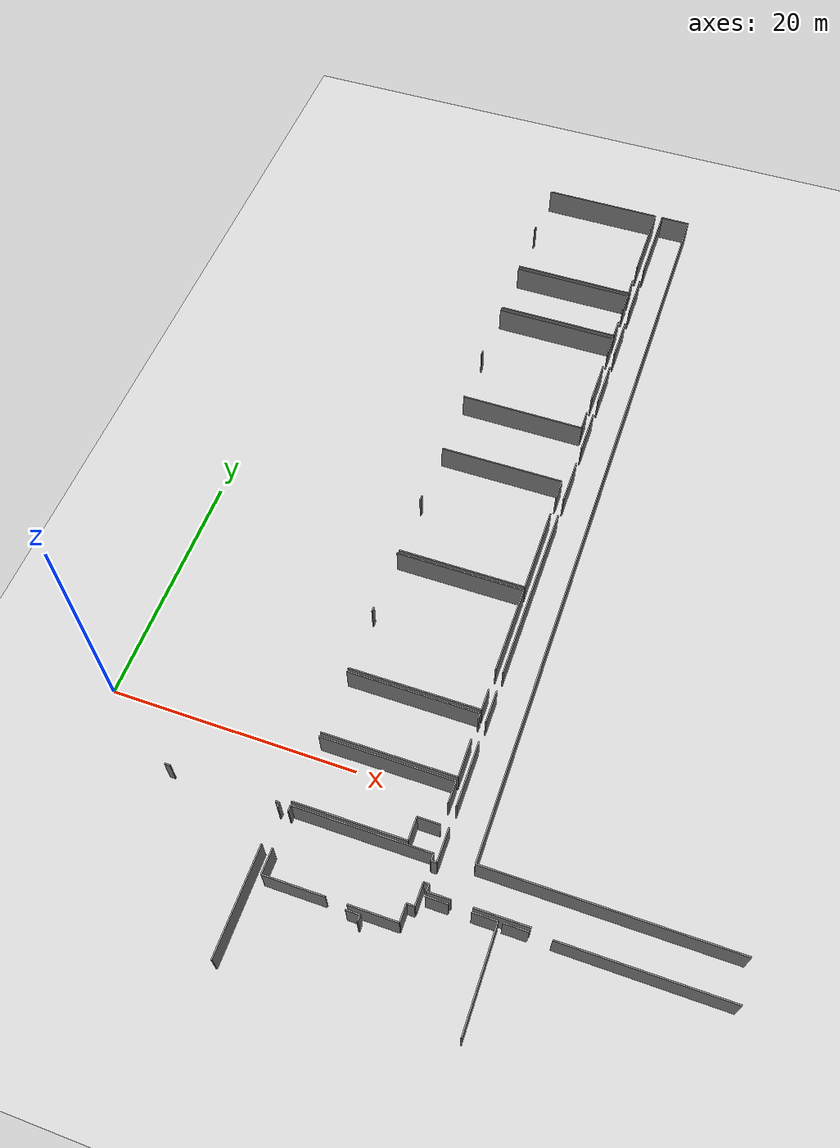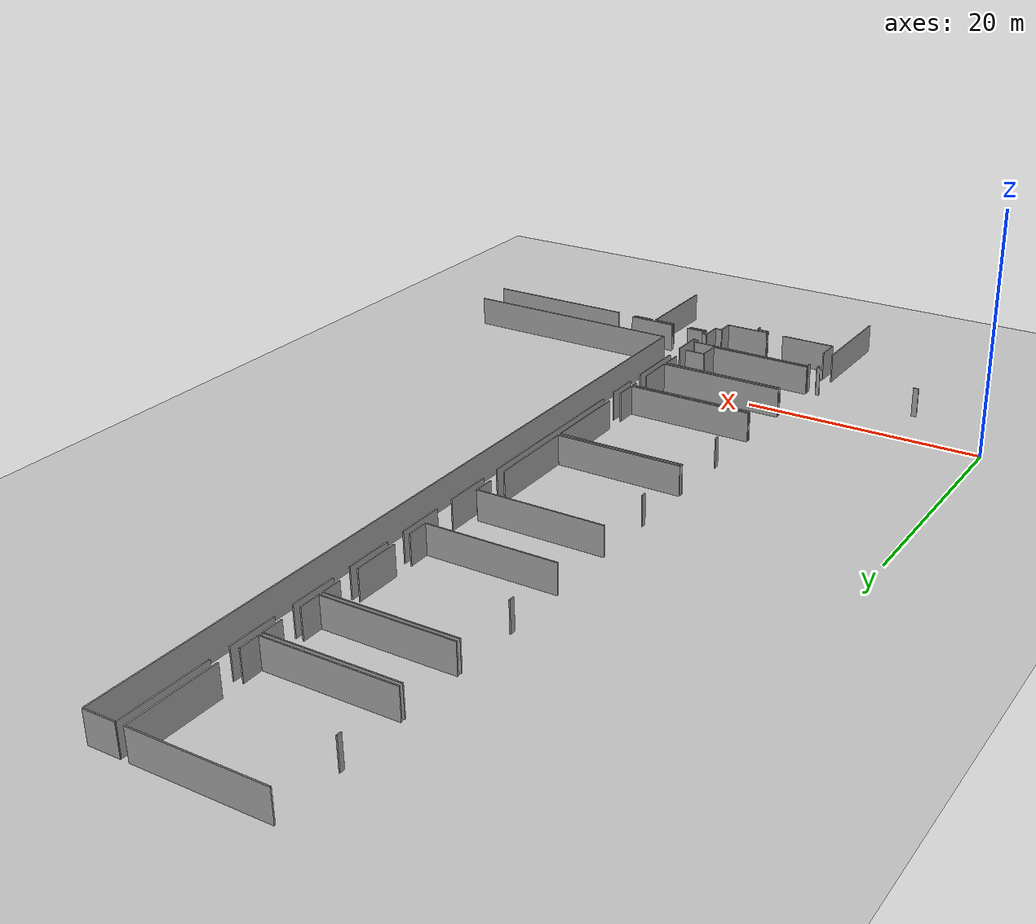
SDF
<sdf version="1.6">
 <world name="default">
  <model name="ground_plane">
   <static>1</static>
   <link name="link">
    <collision name="collision">
     <geometry><plane><normal>0 0 1</normal><size>100 100</size></plane></geometry>
     <surface><friction><ode><mu>100</mu><mu2>50</mu2></ode></friction></surface>
    </collision>
    <visual name="visual">
     <cast_shadows>0</cast_shadows>
     <geometry><plane><normal>0 0 1</normal><size>100 100</size></plane></geometry>
     <material>
      <script><uri>file://media/materials/scripts/gazebo.material</uri><name>Gazebo/Grey</name></script>
     </material>
    </visual>
   </link>
  </model>
  <model name="0510045905_A_40_1_103">
   <static>1</static>
   <link name="Wall_154">
    <collision name="Wall_154_Collision">
     <geometry><box><size>0.448468620521 0.1 2.5</size></box></geometry>
     <pose>0.224234310261 0 1.25 0 0 0</pose>
    </collision>
    <visual name="Wall_154_Visual">
     <pose>0.224234310261 0 1.25 0 0 0</pose>
     <geometry><box><size>0.448468620521 0.1 2.5</size></box></geometry>
     <material>
      <script><uri>file://media/materials/scripts/gazebo.material</uri><name>Gazebo/Grey</name></script>
      <ambient>1 1 1 1</ambient>
     </material>
    </visual>
    <pose>90.9373552534 -67.2365373756 0 0 0 0.0</pose>
   </link>
   <link name="Wall_155">
    <collision name="Wall_155_Collision">
     <geometry><box><size>0.295679650768 0.1 2.5</size></box></geometry>
     <pose>0.147839825384 0 1.25 0 0 0</pose>
    </collision>
    <visual name="Wall_155_Visual">
     <pose>0.147839825384 0 1.25 0 0 0</pose>
     <geometry><box><size>0.295679650768 0.1 2.5</size></box></geometry>
     <material>
      <script><uri>file://media/materials/scripts/gazebo.material</uri><name>Gazebo/Grey</name></script>
      <ambient>1 1 1 1</ambient>
     </material>
    </visual>
    <pose>99.6772904069 -67.2365373756 0 0 0 0.0</pose>
   </link>
   <link name="Wall_156">
    <collision name="Wall_156_Collision">
     <geometry><box><size>0.362683451457 0.1 2.5</size></box></geometry>
     <pose>0.181341725729 0 1.25 0 0 0</pose>
    </collision>
    <visual name="Wall_156_Visual">
     <pose>0.181341725729 0 1.25 0 0 0</pose>
     <geometry><box><size>0.362683451457 0.1 2.5</size></box></geometry>
     <material>
      <script><uri>file://media/materials/scripts/gazebo.material</uri><name>Gazebo/Grey</name></script>
      <ambient>1 1 1 1</ambient>
     </material>
    </visual>
    <pose>99.9729700577 -67.2365373756 0 0 0 -1.57079632679</pose>
   </link>
   <link name="Wall_157">
    <collision name="Wall_157_Collision">
     <geometry><box><size>8.36735341332 0.1 2.5</size></box></geometry>
     <pose>4.18367670666 0 1.25 0 0 0</pose>
    </collision>
    <visual name="Wall_157_Visual">
     <pose>4.18367670666 0 1.25 0 0 0</pose>
     <geometry><box><size>8.36735341332 0.1 2.5</size></box></geometry>
     <material>
      <script><uri>file://media/materials/scripts/gazebo.material</uri><name>Gazebo/Grey</name></script>
      <ambient>1 1 1 1</ambient>
     </material>
    </visual>
    <pose>99.9729700577 -70.4265781743 0 0 0 -1.57079632679</pose>
   </link>
   <link name="Wall_166">
    <collision name="Wall_166_Collision">
     <geometry><box><size>1.98574900224 0.1 2.5</size></box></geometry>
     <pose>0.99287450112 0 1.25 0 0 0</pose>
    </collision>
    <visual name="Wall_166_Visual">
     <pose>0.99287450112 0 1.25 0 0 0</pose>
     <geometry><box><size>1.98574900224 0.1 2.5</size></box></geometry>
     <material>
      <script><uri>file://media/materials/scripts/gazebo.material</uri><name>Gazebo/Grey</name></script>
      <ambient>1 1 1 1</ambient>
     </material>
    </visual>
    <pose>100.808487148 -72.4232406744 0 0 0 1.57079632679</pose>
   </link>
   <link name="Wall_167">
    <collision name="Wall_167_Collision">
     <geometry><box><size>0.48552375272 0.1 2.5</size></box></geometry>
     <pose>0.24276187636 0 1.25 0 0 0</pose>
    </collision>
    <visual name="Wall_167_Visual">
     <pose>0.24276187636 0 1.25 0 0 0</pose>
     <geometry><box><size>0.48552375272 0.1 2.5</size></box></geometry>
     <material>
      <script><uri>file://media/materials/scripts/gazebo.material</uri><name>Gazebo/Grey</name></script>
      <ambient>1 1 1 1</ambient>
     </material>
    </visual>
    <pose>100.808487148 -67.6400829933 0 0 0 1.57079632679</pose>
   </link>
   <link name="Wall_168">
    <collision name="Wall_168_Collision">
     <geometry><box><size>10.7706071585 0.1 2.5</size></box></geometry>
     <pose>5.38530357925 0 1.25 0 0 0</pose>
    </collision>
    <visual name="Wall_168_Visual">
     <pose>5.38530357925 0 1.25 0 0 0</pose>
     <geometry><box><size>10.7706071585 0.1 2.5</size></box></geometry>
     <material>
      <script><uri>file://media/materials/scripts/gazebo.material</uri><name>Gazebo/Grey</name></script>
      <ambient>1 1 1 1</ambient>
     </material>
    </visual>
    <pose>100.808487148 -67.1545592406 0 0 0 0.0</pose>
   </link>
   <link name="Wall_169">
    <collision name="Wall_169_Collision">
     <geometry><box><size>0.529685348629 0.1 2.5</size></box></geometry>
     <pose>0.264842674315 0 1.25 0 0 0</pose>
    </collision>
    <visual name="Wall_169_Visual">
     <pose>0.264842674315 0 1.25 0 0 0</pose>
     <geometry><box><size>0.529685348629 0.1 2.5</size></box></geometry>
     <material>
      <script><uri>file://media/materials/scripts/gazebo.material</uri><name>Gazebo/Grey</name></script>
      <ambient>1 1 1 1</ambient>
     </material>
    </visual>
    <pose>111.579094307 -67.1545592406 0 0 0 -1.57079632679</pose>
   </link>
   <link name="Wall_170">
    <collision name="Wall_170_Collision">
     <geometry><box><size>0.419281358857 0.1 2.5</size></box></geometry>
     <pose>0.209640679429 0 1.25 0 0 0</pose>
    </collision>
    <visual name="Wall_170_Visual">
     <pose>0.209640679429 0 1.25 0 0 0</pose>
     <geometry><box><size>0.419281358857 0.1 2.5</size></box></geometry>
     <material>
      <script><uri>file://media/materials/scripts/gazebo.material</uri><name>Gazebo/Grey</name></script>
      <ambient>1 1 1 1</ambient>
     </material>
    </visual>
    <pose>111.579094307 -67.6842445893 0 0 0 0.0</pose>
   </link>
   <link name="Wall_171">
    <collision name="Wall_171_Collision">
     <geometry><box><size>2.64842674315 0.1 2.5</size></box></geometry>
     <pose>1.32421337157 0 1.25 0 0 0</pose>
    </collision>
    <visual name="Wall_171_Visual">
     <pose>1.32421337157 0 1.25 0 0 0</pose>
     <geometry><box><size>2.64842674315 0.1 2.5</size></box></geometry>
     <material>
      <script><uri>file://media/materials/scripts/gazebo.material</uri><name>Gazebo/Grey</name></script>
      <ambient>1 1 1 1</ambient>
     </material>
    </visual>
    <pose>111.998375665 -67.6842445893 0 0 0 1.57079632679</pose>
   </link>
   <link name="Wall_172">
    <collision name="Wall_172_Collision">
     <geometry><box><size>5.20091622621 0.1 2.5</size></box></geometry>
     <pose>2.60045811311 0 1.25 0 0 0</pose>
    </collision>
    <visual name="Wall_172_Visual">
     <pose>2.60045811311 0 1.25 0 0 0</pose>
     <geometry><box><size>5.20091622621 0.1 2.5</size></box></geometry>
     <material>
      <script><uri>file://media/materials/scripts/gazebo.material</uri><name>Gazebo/Grey</name></script>
      <ambient>1 1 1 1</ambient>
     </material>
    </visual>
    <pose>111.998375665 -63.3642760607 0 0 0 1.57079632679</pose>
   </link>
   <link name="Wall_173">
    <collision name="Wall_173_Collision">
     <geometry><box><size>2.66999993655 0.1 2.5</size></box></geometry>
     <pose>1.33499996827 0 1.25 0 0 0</pose>
    </collision>
    <visual name="Wall_173_Visual">
     <pose>1.33499996827 0 1.25 0 0 0</pose>
     <geometry><box><size>2.66999993655 0.1 2.5</size></box></geometry>
     <material>
      <script><uri>file://media/materials/scripts/gazebo.material</uri><name>Gazebo/Grey</name></script>
      <ambient>1 1 1 1</ambient>
     </material>
    </visual>
    <pose>111.998375665 -56.5029853493 0 0 0 1.57079632679</pose>
   </link>
   <link name="Wall_174">
    <collision name="Wall_174_Collision">
     <geometry><box><size>15.1311840511 0.1 2.5</size></box></geometry>
     <pose>7.56559202553 0 1.25 0 0 0</pose>
    </collision>
    <visual name="Wall_174_Visual">
     <pose>7.56559202553 0 1.25 0 0 0</pose>
     <geometry><box><size>15.1311840511 0.1 2.5</size></box></geometry>
     <material>
      <script><uri>file://media/materials/scripts/gazebo.material</uri><name>Gazebo/Grey</name></script>
      <ambient>1 1 1 1</ambient>
     </material>
    </visual>
    <pose>111.998375665 -52.1926613072 0 0 0 1.57079632679</pose>
   </link>
   <link name="Wall_175">
    <collision name="Wall_175_Collision">
     <geometry><box><size>3.90347899469 0.1 2.5</size></box></geometry>
     <pose>1.95173949734 0 1.25 0 0 0</pose>
    </collision>
    <visual name="Wall_175_Visual">
     <pose>1.95173949734 0 1.25 0 0 0</pose>
     <geometry><box><size>3.90347899469 0.1 2.5</size></box></geometry>
     <material>
      <script><uri>file://media/materials/scripts/gazebo.material</uri><name>Gazebo/Grey</name></script>
      <ambient>1 1 1 1</ambient>
     </material>
    </visual>
    <pose>111.998375665 -35.3528803386 0 0 0 1.57079632679</pose>
   </link>
   <link name="Wall_176">
    <collision name="Wall_176_Collision">
     <geometry><box><size>3.85728698058 0.1 2.5</size></box></geometry>
     <pose>1.92864349029 0 1.25 0 0 0</pose>
    </collision>
    <visual name="Wall_176_Visual">
     <pose>1.92864349029 0 1.25 0 0 0</pose>
     <geometry><box><size>3.85728698058 0.1 2.5</size></box></geometry>
     <material>
      <script><uri>file://media/materials/scripts/gazebo.material</uri><name>Gazebo/Grey</name></script>
      <ambient>1 1 1 1</ambient>
     </material>
    </visual>
    <pose>111.998375665 -29.7413120309 0 0 0 1.57079632679</pose>
   </link>
   <link name="Wall_177">
    <collision name="Wall_177_Collision">
     <geometry><box><size>3.97175180675 0.1 2.5</size></box></geometry>
     <pose>1.98587590338 0 1.25 0 0 0</pose>
    </collision>
    <visual name="Wall_177_Visual">
     <pose>1.98587590338 0 1.25 0 0 0</pose>
     <geometry><box><size>3.97175180675 0.1 2.5</size></box></geometry>
     <material>
      <script><uri>file://media/materials/scripts/gazebo.material</uri><name>Gazebo/Grey</name></script>
      <ambient>1 1 1 1</ambient>
     </material>
    </visual>
    <pose>111.998375665 -24.1952247102 0 0 0 1.57079632679</pose>
   </link>
   <link name="Wall_178">
    <collision name="Wall_178_Collision">
     <geometry><box><size>3.87403793075 0.1 2.5</size></box></geometry>
     <pose>1.93701896538 0 1.25 0 0 0</pose>
    </collision>
    <visual name="Wall_178_Visual">
     <pose>1.93701896538 0 1.25 0 0 0</pose>
     <geometry><box><size>3.87403793075 0.1 2.5</size></box></geometry>
     <material>
      <script><uri>file://media/materials/scripts/gazebo.material</uri><name>Gazebo/Grey</name></script>
      <ambient>1 1 1 1</ambient>
     </material>
    </visual>
    <pose>111.998375665 -18.5590375818 0 0 0 1.57079632679</pose>
   </link>
   <link name="Wall_179">
    <collision name="Wall_179_Collision">
     <geometry><box><size>3.96159971574 0.1 2.5</size></box></geometry>
     <pose>1.98079985787 0 1.25 0 0 0</pose>
    </collision>
    <visual name="Wall_179_Visual">
     <pose>1.98079985787 0 1.25 0 0 0</pose>
     <geometry><box><size>3.96159971574 0.1 2.5</size></box></geometry>
     <material>
      <script><uri>file://media/materials/scripts/gazebo.material</uri><name>Gazebo/Grey</name></script>
      <ambient>1 1 1 1</ambient>
     </material>
    </visual>
    <pose>111.998375665 -13.0055899951 0 0 0 1.57079632679</pose>
   </link>
   <link name="Wall_180">
    <collision name="Wall_180_Collision">
     <geometry><box><size>7.35925077568 0.1 2.5</size></box></geometry>
     <pose>3.67962538784 0 1.25 0 0 0</pose>
    </collision>
    <visual name="Wall_180_Visual">
     <pose>3.67962538784 0 1.25 0 0 0</pose>
     <geometry><box><size>7.35925077568 0.1 2.5</size></box></geometry>
     <material>
      <script><uri>file://media/materials/scripts/gazebo.material</uri><name>Gazebo/Grey</name></script>
      <ambient>1 1 1 1</ambient>
     </material>
    </visual>
    <pose>111.998375665 -7.39046845555 0 0 0 1.57079632679</pose>
   </link>
   <link name="Wall_181">
    <collision name="Wall_181_Collision">
     <geometry><box><size>2.57761590833 0.1 2.5</size></box></geometry>
     <pose>1.28880795416 0 1.25 0 0 0</pose>
    </collision>
    <visual name="Wall_181_Visual">
     <pose>1.28880795416 0 1.25 0 0 0</pose>
     <geometry><box><size>2.57761590833 0.1 2.5</size></box></geometry>
     <material>
      <script><uri>file://media/materials/scripts/gazebo.material</uri><name>Gazebo/Grey</name></script>
      <ambient>1 1 1 1</ambient>
     </material>
    </visual>
    <pose>111.998375665 -0.0312176798665 0 0 0 0.0</pose>
   </link>
   <link name="Wall_182">
    <collision name="Wall_182_Collision">
     <geometry><box><size>66.8705544945 0.1 2.5</size></box></geometry>
     <pose>33.4352772473 0 1.25 0 0 0</pose>
    </collision>
    <visual name="Wall_182_Visual">
     <pose>33.4352772473 0 1.25 0 0 0</pose>
     <geometry><box><size>66.8705544945 0.1 2.5</size></box></geometry>
     <material>
      <script><uri>file://media/materials/scripts/gazebo.material</uri><name>Gazebo/Grey</name></script>
      <ambient>1 1 1 1</ambient>
     </material>
    </visual>
    <pose>114.575991574 -0.0312176798665 0 0 0 -1.57079632679</pose>
   </link>
   <link name="Wall_183">
    <collision name="Wall_183_Collision">
     <geometry><box><size>19.3270432669 0.1 2.5</size></box></geometry>
     <pose>9.66352163347 0 1.25 0 0 0</pose>
    </collision>
    <visual name="Wall_183_Visual">
     <pose>9.66352163347 0 1.25 0 0 0</pose>
     <geometry><box><size>19.3270432669 0.1 2.5</size></box></geometry>
     <material>
      <script><uri>file://media/materials/scripts/gazebo.material</uri><name>Gazebo/Grey</name></script>
      <ambient>1 1 1 1</ambient>
     </material>
    </visual>
    <pose>114.575991574 -66.9017721744 0 0 0 0.0</pose>
   </link>
   <link name="Wall_209">
    <collision name="Wall_209_Collision">
     <geometry><box><size>4.12606359016 0.1 2.5</size></box></geometry>
     <pose>2.06303179508 0 1.25 0 0 0</pose>
    </collision>
    <visual name="Wall_209_Visual">
     <pose>2.06303179508 0 1.25 0 0 0</pose>
     <geometry><box><size>4.12606359016 0.1 2.5</size></box></geometry>
     <material>
      <script><uri>file://media/materials/scripts/gazebo.material</uri><name>Gazebo/Grey</name></script>
      <ambient>1 1 1 1</ambient>
     </material>
    </visual>
    <pose>119.471837465 -69.8169451089 0 0 0 3.14159265359</pose>
   </link>
   <link name="Wall_210">
    <collision name="Wall_210_Collision">
     <geometry><box><size>1.77915395012 0.1 2.5</size></box></geometry>
     <pose>0.889576975058 0 1.25 0 0 0</pose>
    </collision>
    <visual name="Wall_210_Visual">
     <pose>0.889576975058 0 1.25 0 0 0</pose>
     <geometry><box><size>1.77915395012 0.1 2.5</size></box></geometry>
     <material>
      <script><uri>file://media/materials/scripts/gazebo.material</uri><name>Gazebo/Grey</name></script>
      <ambient>1 1 1 1</ambient>
     </material>
    </visual>
    <pose>113.768392734 -69.8169451089 0 0 0 3.14159265359</pose>
   </link>
   <link name="Wall_211">
    <collision name="Wall_211_Collision">
     <geometry><box><size>0.531715766832 0.1 2.5</size></box></geometry>
     <pose>0.265857883416 0 1.25 0 0 0</pose>
    </collision>
    <visual name="Wall_211_Visual">
     <pose>0.265857883416 0 1.25 0 0 0</pose>
     <geometry><box><size>0.531715766832 0.1 2.5</size></box></geometry>
     <material>
      <script><uri>file://media/materials/scripts/gazebo.material</uri><name>Gazebo/Grey</name></script>
      <ambient>1 1 1 1</ambient>
     </material>
    </visual>
    <pose>111.989238784 -69.8169451089 0 0 0 1.57079632679</pose>
   </link>
   <link name="Wall_212">
    <collision name="Wall_212_Collision">
     <geometry><box><size>0.416489533829 0.1 2.5</size></box></geometry>
     <pose>0.208244766914 0 1.25 0 0 0</pose>
    </collision>
    <visual name="Wall_212_Visual">
     <pose>0.208244766914 0 1.25 0 0 0</pose>
     <geometry><box><size>0.416489533829 0.1 2.5</size></box></geometry>
     <material>
      <script><uri>file://media/materials/scripts/gazebo.material</uri><name>Gazebo/Grey</name></script>
      <ambient>1 1 1 1</ambient>
     </material>
    </visual>
    <pose>111.989238784 -69.2852293421 0 0 0 3.14159265359</pose>
   </link>
   <link name="Wall_213">
    <collision name="Wall_213_Collision">
     <geometry><box><size>1.75072809528 0.1 2.5</size></box></geometry>
     <pose>0.875364047639 0 1.25 0 0 0</pose>
    </collision>
    <visual name="Wall_213_Visual">
     <pose>0.875364047639 0 1.25 0 0 0</pose>
     <geometry><box><size>1.75072809528 0.1 2.5</size></box></geometry>
     <material>
      <script><uri>file://media/materials/scripts/gazebo.material</uri><name>Gazebo/Grey</name></script>
      <ambient>1 1 1 1</ambient>
     </material>
    </visual>
    <pose>111.57274925 -69.2852293421 0 0 0 -1.57079632679</pose>
   </link>
   <link name="Wall_214">
    <collision name="Wall_214_Collision">
     <geometry><box><size>0.619531354099 0.1 2.5</size></box></geometry>
     <pose>0.309765677049 0 1.25 0 0 0</pose>
    </collision>
    <visual name="Wall_214_Visual">
     <pose>0.309765677049 0 1.25 0 0 0</pose>
     <geometry><box><size>0.619531354099 0.1 2.5</size></box></geometry>
     <material>
      <script><uri>file://media/materials/scripts/gazebo.material</uri><name>Gazebo/Grey</name></script>
      <ambient>1 1 1 1</ambient>
     </material>
    </visual>
    <pose>111.57274925 -71.0359574374 0 0 0 3.14159265359</pose>
   </link>
   <link name="Wall_215">
    <collision name="Wall_215_Collision">
     <geometry><box><size>1.37865395963 0.1 2.5</size></box></geometry>
     <pose>0.689326979816 0 1.25 0 0 0</pose>
    </collision>
    <visual name="Wall_215_Visual">
     <pose>0.689326979816 0 1.25 0 0 0</pose>
     <geometry><box><size>1.37865395963 0.1 2.5</size></box></geometry>
     <material>
      <script><uri>file://media/materials/scripts/gazebo.material</uri><name>Gazebo/Grey</name></script>
      <ambient>1 1 1 1</ambient>
     </material>
    </visual>
    <pose>110.953217896 -71.0359574374 0 0 0 -1.57079632679</pose>
   </link>
   <link name="Wall_216">
    <collision name="Wall_216_Collision">
     <geometry><box><size>3.80195808455 0.1 2.5</size></box></geometry>
     <pose>1.90097904228 0 1.25 0 0 0</pose>
    </collision>
    <visual name="Wall_216_Visual">
     <pose>1.90097904228 0 1.25 0 0 0</pose>
     <geometry><box><size>3.80195808455 0.1 2.5</size></box></geometry>
     <material>
      <script><uri>file://media/materials/scripts/gazebo.material</uri><name>Gazebo/Grey</name></script>
      <ambient>1 1 1 1</ambient>
     </material>
    </visual>
    <pose>110.953217896 -72.414611397 0 0 0 3.14159265359</pose>
   </link>
   <link name="Wall_217">
    <collision name="Wall_217_Collision">
     <geometry><box><size>4.77047537197 0.1 2.5</size></box></geometry>
     <pose>2.38523768598 0 1.25 0 0 0</pose>
    </collision>
    <visual name="Wall_217_Visual">
     <pose>2.38523768598 0 1.25 0 0 0</pose>
     <geometry><box><size>4.77047537197 0.1 2.5</size></box></geometry>
     <material>
      <script><uri>file://media/materials/scripts/gazebo.material</uri><name>Gazebo/Grey</name></script>
      <ambient>1 1 1 1</ambient>
     </material>
    </visual>
    <pose>105.578954715 -72.414611397 0 0 0 -3.13978376005</pose>
   </link>
   <link name="Wall_218">
    <collision name="Wall_218_Collision">
     <geometry><box><size>10.6596955642 0.1 2.5</size></box></geometry>
     <pose>5.32984778209 0 1.25 0 0 0</pose>
    </collision>
    <visual name="Wall_218_Visual">
     <pose>5.32984778209 0 1.25 0 0 0</pose>
     <geometry><box><size>10.6596955642 0.1 2.5</size></box></geometry>
     <material>
      <script><uri>file://media/materials/scripts/gazebo.material</uri><name>Gazebo/Grey</name></script>
      <ambient>1 1 1 1</ambient>
     </material>
    </visual>
    <pose>111.380367125 -10.8766965096 0 0 0 3.14159265359</pose>
   </link>
   <link name="Wall_219">
    <collision name="Wall_219_Collision">
     <geometry><box><size>0.397200560903 0.1 2.5</size></box></geometry>
     <pose>0.198600280452 0 1.25 0 0 0</pose>
    </collision>
    <visual name="Wall_219_Visual">
     <pose>0.198600280452 0 1.25 0 0 0</pose>
     <geometry><box><size>0.397200560903 0.1 2.5</size></box></geometry>
     <material>
      <script><uri>file://media/materials/scripts/gazebo.material</uri><name>Gazebo/Grey</name></script>
      <ambient>1 1 1 1</ambient>
     </material>
    </visual>
    <pose>100.720671561 -5.69024701306 0 0 0 1.57079632679</pose>
   </link>
   <link name="Wall_220">
    <collision name="Wall_220_Collision">
     <geometry><box><size>10.6069046909 0.1 2.5</size></box></geometry>
     <pose>5.30345234545 0 1.25 0 0 0</pose>
    </collision>
    <visual name="Wall_220_Visual">
     <pose>5.30345234545 0 1.25 0 0 0</pose>
     <geometry><box><size>10.6069046909 0.1 2.5</size></box></geometry>
     <material>
      <script><uri>file://media/materials/scripts/gazebo.material</uri><name>Gazebo/Grey</name></script>
      <ambient>1 1 1 1</ambient>
     </material>
    </visual>
    <pose>100.720671561 -0.0335019003445 0 0 0 0.0</pose>
   </link>
   <link name="Wall_221">
    <collision name="Wall_221_Collision">
     <geometry><box><size>7.35036769605 0.1 2.5</size></box></geometry>
     <pose>3.67518384802 0 1.25 0 0 0</pose>
    </collision>
    <visual name="Wall_221_Visual">
     <pose>3.67518384802 0 1.25 0 0 0</pose>
     <geometry><box><size>7.35036769605 0.1 2.5</size></box></geometry>
     <material>
      <script><uri>file://media/materials/scripts/gazebo.material</uri><name>Gazebo/Grey</name></script>
      <ambient>1 1 1 1</ambient>
     </material>
    </visual>
    <pose>111.327576252 -0.0335019003445 0 0 0 -1.57079632679</pose>
   </link>
   <link name="Wall_222">
    <collision name="Wall_222_Collision">
     <geometry><box><size>1.70890490594 0.1 2.5</size></box></geometry>
     <pose>0.854452452972 0 1.25 0 0 0</pose>
    </collision>
    <visual name="Wall_222_Visual">
     <pose>0.854452452972 0 1.25 0 0 0</pose>
     <geometry><box><size>1.70890490594 0.1 2.5</size></box></geometry>
     <material>
      <script><uri>file://media/materials/scripts/gazebo.material</uri><name>Gazebo/Grey</name></script>
      <ambient>1 1 1 1</ambient>
     </material>
    </visual>
    <pose>111.327576252 -9.16860719656 0 0 0 -1.5398997725</pose>
   </link>
   <link name="Wall_223">
    <collision name="Wall_223_Collision">
     <geometry><box><size>10.6518276936 0.1 2.5</size></box></geometry>
     <pose>5.32591384682 0 1.25 0 0 0</pose>
    </collision>
    <visual name="Wall_223_Visual">
     <pose>5.32591384682 0 1.25 0 0 0</pose>
     <geometry><box><size>10.6518276936 0.1 2.5</size></box></geometry>
     <material>
      <script><uri>file://media/materials/scripts/gazebo.material</uri><name>Gazebo/Grey</name></script>
      <ambient>1 1 1 1</ambient>
     </material>
    </visual>
    <pose>111.389250205 -16.4458798373 0 0 0 3.14159265359</pose>
   </link>
   <link name="Wall_224">
    <collision name="Wall_224_Collision">
     <geometry><box><size>10.6388837776 0.1 2.5</size></box></geometry>
     <pose>5.3194418888 0 1.25 0 0 0</pose>
    </collision>
    <visual name="Wall_224_Visual">
     <pose>5.3194418888 0 1.25 0 0 0</pose>
     <geometry><box><size>10.6388837776 0.1 2.5</size></box></geometry>
     <material>
      <script><uri>file://media/materials/scripts/gazebo.material</uri><name>Gazebo/Grey</name></script>
      <ambient>1 1 1 1</ambient>
     </material>
    </visual>
    <pose>100.737422511 -11.2249132313 0 0 0 0.0</pose>
   </link>
   <link name="Wall_225">
    <collision name="Wall_225_Collision">
     <geometry><box><size>1.74463684067 0.1 2.5</size></box></geometry>
     <pose>0.872318420335 0 1.25 0 0 0</pose>
    </collision>
    <visual name="Wall_225_Visual">
     <pose>0.872318420335 0 1.25 0 0 0</pose>
     <geometry><box><size>1.74463684067 0.1 2.5</size></box></geometry>
     <material>
      <script><uri>file://media/materials/scripts/gazebo.material</uri><name>Gazebo/Grey</name></script>
      <ambient>1 1 1 1</ambient>
     </material>
    </visual>
    <pose>111.376306289 -11.2249132313 0 0 0 -1.57079632679</pose>
   </link>
   <link name="Wall_226">
    <collision name="Wall_226_Collision">
     <geometry><box><size>1.77158716917 0.1 2.5</size></box></geometry>
     <pose>0.885793584585 0 1.25 0 0 0</pose>
    </collision>
    <visual name="Wall_226_Visual">
     <pose>0.885793584585 0 1.25 0 0 0</pose>
     <geometry><box><size>1.77158716917 0.1 2.5</size></box></geometry>
     <material>
      <script><uri>file://media/materials/scripts/gazebo.material</uri><name>Gazebo/Grey</name></script>
      <ambient>1 1 1 1</ambient>
     </material>
    </visual>
    <pose>111.376306289 -14.6743399555 0 0 0 -1.56348986656</pose>
   </link>
   <link name="Wall_227">
    <collision name="Wall_227_Collision">
     <geometry><box><size>10.718577692 0.1 2.5</size></box></geometry>
     <pose>5.35928884602 0 1.25 0 0 0</pose>
    </collision>
    <visual name="Wall_227_Visual">
     <pose>5.35928884602 0 1.25 0 0 0</pose>
     <geometry><box><size>10.718577692 0.1 2.5</size></box></geometry>
     <material>
      <script><uri>file://media/materials/scripts/gazebo.material</uri><name>Gazebo/Grey</name></script>
      <ambient>1 1 1 1</ambient>
     </material>
    </visual>
    <pose>111.433665603 -27.646174248 0 0 0 3.14159265359</pose>
   </link>
   <link name="Wall_228">
    <collision name="Wall_228_Collision">
     <geometry><box><size>0.460651129737 0.1 2.5</size></box></geometry>
     <pose>0.230325564869 0 1.25 0 0 0</pose>
    </collision>
    <visual name="Wall_228_Visual">
     <pose>0.230325564869 0 1.25 0 0 0</pose>
     <geometry><box><size>0.460651129737 0.1 2.5</size></box></geometry>
     <material>
      <script><uri>file://media/materials/scripts/gazebo.material</uri><name>Gazebo/Grey</name></script>
      <ambient>1 1 1 1</ambient>
     </material>
    </visual>
    <pose>100.715087911 -22.5064243701 0 0 0 1.57079632679</pose>
   </link>
   <link name="Wall_229">
    <collision name="Wall_229_Collision">
     <geometry><box><size>10.6893904304 0.1 2.5</size></box></geometry>
     <pose>5.34469521519 0 1.25 0 0 0</pose>
    </collision>
    <visual name="Wall_229_Visual">
     <pose>5.34469521519 0 1.25 0 0 0</pose>
     <geometry><box><size>10.6893904304 0.1 2.5</size></box></geometry>
     <material>
      <script><uri>file://media/materials/scripts/gazebo.material</uri><name>Gazebo/Grey</name></script>
      <ambient>1 1 1 1</ambient>
     </material>
    </visual>
    <pose>100.715087911 -16.8065328706 0 0 0 0.0</pose>
   </link>
   <link name="Wall_230">
    <collision name="Wall_230_Collision">
     <geometry><box><size>1.6888003401 0.1 2.5</size></box></geometry>
     <pose>0.844400170048 0 1.25 0 0 0</pose>
    </collision>
    <visual name="Wall_230_Visual">
     <pose>0.844400170048 0 1.25 0 0 0</pose>
     <geometry><box><size>1.6888003401 0.1 2.5</size></box></geometry>
     <material>
      <script><uri>file://media/materials/scripts/gazebo.material</uri><name>Gazebo/Grey</name></script>
      <ambient>1 1 1 1</ambient>
     </material>
    </visual>
    <pose>111.404478341 -16.8065328706 0 0 0 -1.57079632679</pose>
   </link>
   <link name="Wall_231">
    <collision name="Wall_231_Collision">
     <geometry><box><size>3.85754078285 0.1 2.5</size></box></geometry>
     <pose>1.92877039143 0 1.25 0 0 0</pose>
    </collision>
    <visual name="Wall_231_Visual">
     <pose>1.92877039143 0 1.25 0 0 0</pose>
     <geometry><box><size>3.85754078285 0.1 2.5</size></box></geometry>
     <material>
      <script><uri>file://media/materials/scripts/gazebo.material</uri><name>Gazebo/Grey</name></script>
      <ambient>1 1 1 1</ambient>
     </material>
    </visual>
    <pose>111.404478341 -20.2993597838 0 0 0 -1.57079632679</pose>
   </link>
   <link name="Wall_232">
    <collision name="Wall_232_Collision">
     <geometry><box><size>1.81289082089 0.1 2.5</size></box></geometry>
     <pose>0.906445410443 0 1.25 0 0 0</pose>
    </collision>
    <visual name="Wall_232_Visual">
     <pose>0.906445410443 0 1.25 0 0 0</pose>
     <geometry><box><size>1.81289082089 0.1 2.5</size></box></geometry>
     <material>
      <script><uri>file://media/materials/scripts/gazebo.material</uri><name>Gazebo/Grey</name></script>
      <ambient>1 1 1 1</ambient>
     </material>
    </visual>
    <pose>111.404478341 -25.8335183975 0 0 0 -1.55469578594</pose>
   </link>
   <link name="Wall_233">
    <collision name="Wall_233_Collision">
     <geometry><box><size>10.6127421432 0.1 2.5</size></box></geometry>
     <pose>5.30637107162 0 1.25 0 0 0</pose>
    </collision>
    <visual name="Wall_233_Visual">
     <pose>5.30637107162 0 1.25 0 0 0</pose>
     <geometry><box><size>10.6127421432 0.1 2.5</size></box></geometry>
     <material>
      <script><uri>file://media/materials/scripts/gazebo.material</uri><name>Gazebo/Grey</name></script>
      <ambient>1 1 1 1</ambient>
     </material>
    </visual>
    <pose>111.385189368 -44.4801177643 0 0 0 3.14159265359</pose>
   </link>
   <link name="Wall_234">
    <collision name="Wall_234_Collision">
     <geometry><box><size>0.400499990482 0.1 2.5</size></box></geometry>
     <pose>0.200249995241 0 1.25 0 0 0</pose>
    </collision>
    <visual name="Wall_234_Visual">
     <pose>0.200249995241 0 1.25 0 0 0</pose>
     <geometry><box><size>0.400499990482 0.1 2.5</size></box></geometry>
     <material>
      <script><uri>file://media/materials/scripts/gazebo.material</uri><name>Gazebo/Grey</name></script>
      <ambient>1 1 1 1</ambient>
     </material>
    </visual>
    <pose>100.772447225 -39.2644810061 0 0 0 1.57079632679</pose>
   </link>
   <link name="Wall_235">
    <collision name="Wall_235_Collision">
     <geometry><box><size>10.5820320679 0.1 2.5</size></box></geometry>
     <pose>5.29101603396 0 1.25 0 0 0</pose>
    </collision>
    <visual name="Wall_235_Visual">
     <pose>5.29101603396 0 1.25 0 0 0</pose>
     <geometry><box><size>10.5820320679 0.1 2.5</size></box></geometry>
     <material>
      <script><uri>file://media/materials/scripts/gazebo.material</uri><name>Gazebo/Grey</name></script>
      <ambient>1 1 1 1</ambient>
     </material>
    </visual>
    <pose>100.772447225 -33.6417453982 0 0 0 0.0</pose>
   </link>
   <link name="Wall_236">
    <collision name="Wall_236_Collision">
     <geometry><box><size>1.70098284931 0.1 2.5</size></box></geometry>
     <pose>0.850491424656 0 1.25 0 0 0</pose>
    </collision>
    <visual name="Wall_236_Visual">
     <pose>0.850491424656 0 1.25 0 0 0</pose>
     <geometry><box><size>1.70098284931 0.1 2.5</size></box></geometry>
     <material>
      <script><uri>file://media/materials/scripts/gazebo.material</uri><name>Gazebo/Grey</name></script>
      <ambient>1 1 1 1</ambient>
     </material>
    </visual>
    <pose>111.354479293 -33.6417453982 0 0 0 -1.57079632679</pose>
   </link>
   <link name="Wall_237">
    <collision name="Wall_237_Collision">
     <geometry><box><size>7.41489706979 0.1 2.5</size></box></geometry>
     <pose>3.7074485349 0 1.25 0 0 0</pose>
    </collision>
    <visual name="Wall_237_Visual">
     <pose>3.7074485349 0 1.25 0 0 0</pose>
     <geometry><box><size>7.41489706979 0.1 2.5</size></box></geometry>
     <material>
      <script><uri>file://media/materials/scripts/gazebo.material</uri><name>Gazebo/Grey</name></script>
      <ambient>1 1 1 1</ambient>
     </material>
    </visual>
    <pose>111.354479293 -37.0652842903 0 0 0 -1.56665464245</pose>
   </link>
   <link name="Wall_238">
    <collision name="Wall_238_Collision">
     <geometry><box><size>10.6596955642 0.1 2.5</size></box></geometry>
     <pose>5.32984778209 0 1.25 0 0 0</pose>
    </collision>
    <visual name="Wall_238_Visual">
     <pose>5.32984778209 0 1.25 0 0 0</pose>
     <geometry><box><size>10.6596955642 0.1 2.5</size></box></geometry>
     <material>
      <script><uri>file://media/materials/scripts/gazebo.material</uri><name>Gazebo/Grey</name></script>
      <ambient>1 1 1 1</ambient>
     </material>
    </visual>
    <pose>111.389250205 -55.6837116045 0 0 0 3.14159265359</pose>
   </link>
   <link name="Wall_239">
    <collision name="Wall_239_Collision">
     <geometry><box><size>0.422326986161 0.1 2.5</size></box></geometry>
     <pose>0.211163493081 0 1.25 0 0 0</pose>
    </collision>
    <visual name="Wall_239_Visual">
     <pose>0.211163493081 0 1.25 0 0 0</pose>
     <geometry><box><size>0.422326986161 0.1 2.5</size></box></geometry>
     <material>
      <script><uri>file://media/materials/scripts/gazebo.material</uri><name>Gazebo/Grey</name></script>
      <ambient>1 1 1 1</ambient>
     </material>
    </visual>
    <pose>100.72955464 -50.4871100169 0 0 0 1.57079632679</pose>
   </link>
   <link name="Wall_240">
    <collision name="Wall_240_Collision">
     <geometry><box><size>10.6579189482 0.1 2.5</size></box></geometry>
     <pose>5.32895947412 0 1.25 0 0 0</pose>
    </collision>
    <visual name="Wall_240_Visual">
     <pose>5.32895947412 0 1.25 0 0 0</pose>
     <geometry><box><size>10.6579189482 0.1 2.5</size></box></geometry>
     <material>
      <script><uri>file://media/materials/scripts/gazebo.material</uri><name>Gazebo/Grey</name></script>
      <ambient>1 1 1 1</ambient>
     </material>
    </visual>
    <pose>100.72955464 -44.7790968446 0 0 0 0.0</pose>
   </link>
   <link name="Wall_241">
    <collision name="Wall_241_Collision">
     <geometry><box><size>7.34503784826 0.1 2.5</size></box></geometry>
     <pose>3.67251892413 0 1.25 0 0 0</pose>
    </collision>
    <visual name="Wall_241_Visual">
     <pose>3.67251892413 0 1.25 0 0 0</pose>
     <geometry><box><size>7.34503784826 0.1 2.5</size></box></geometry>
     <material>
      <script><uri>file://media/materials/scripts/gazebo.material</uri><name>Gazebo/Grey</name></script>
      <ambient>1 1 1 1</ambient>
     </material>
    </visual>
    <pose>111.387473589 -44.7790968446 0 0 0 -1.57079632679</pose>
   </link>
   <link name="Wall_242">
    <collision name="Wall_242_Collision">
     <geometry><box><size>1.80555026082 0.1 2.5</size></box></geometry>
     <pose>0.902775130412 0 1.25 0 0 0</pose>
    </collision>
    <visual name="Wall_242_Visual">
     <pose>0.902775130412 0 1.25 0 0 0</pose>
     <geometry><box><size>1.80555026082 0.1 2.5</size></box></geometry>
     <material>
      <script><uri>file://media/materials/scripts/gazebo.material</uri><name>Gazebo/Grey</name></script>
      <ambient>1 1 1 1</ambient>
     </material>
    </visual>
    <pose>111.387473589 -53.8781622177 0 0 0 -1.56981235185</pose>
   </link>
   <link name="Wall_243">
    <collision name="Wall_243_Collision">
     <geometry><box><size>10.6893904304 0.1 2.5</size></box></geometry>
     <pose>5.34469521519 0 1.25 0 0 0</pose>
    </collision>
    <visual name="Wall_243_Visual">
     <pose>5.34469521519 0 1.25 0 0 0</pose>
     <geometry><box><size>10.6893904304 0.1 2.5</size></box></geometry>
     <material>
      <script><uri>file://media/materials/scripts/gazebo.material</uri><name>Gazebo/Grey</name></script>
      <ambient>1 1 1 1</ambient>
     </material>
    </visual>
    <pose>111.423513512 -61.2724377074 0 0 0 3.14159265359</pose>
   </link>
   <link name="Wall_244">
    <collision name="Wall_244_Collision">
     <geometry><box><size>10.6543657164 0.1 2.5</size></box></geometry>
     <pose>5.32718285819 0 1.25 0 0 0</pose>
    </collision>
    <visual name="Wall_244_Visual">
     <pose>5.32718285819 0 1.25 0 0 0</pose>
     <geometry><box><size>10.6543657164 0.1 2.5</size></box></geometry>
     <material>
      <script><uri>file://media/materials/scripts/gazebo.material</uri><name>Gazebo/Grey</name></script>
      <ambient>1 1 1 1</ambient>
     </material>
    </visual>
    <pose>100.734123081 -55.9755842211 0 0 0 0.0</pose>
   </link>
   <link name="Wall_245">
    <collision name="Wall_245_Collision">
     <geometry><box><size>0.432986681726 0.1 2.5</size></box></geometry>
     <pose>0.216493340863 0 1.25 0 0 0</pose>
    </collision>
    <visual name="Wall_245_Visual">
     <pose>0.216493340863 0 1.25 0 0 0</pose>
     <geometry><box><size>0.432986681726 0.1 2.5</size></box></geometry>
     <material>
      <script><uri>file://media/materials/scripts/gazebo.material</uri><name>Gazebo/Grey</name></script>
      <ambient>1 1 1 1</ambient>
     </material>
    </visual>
    <pose>111.388488798 -55.9755842211 0 0 0 -1.57079632679</pose>
   </link>
   <link name="Wall_246">
    <collision name="Wall_246_Collision">
     <geometry><box><size>3.12830911895 0.1 2.5</size></box></geometry>
     <pose>1.56415455948 0 1.25 0 0 0</pose>
    </collision>
    <visual name="Wall_246_Visual">
     <pose>1.56415455948 0 1.25 0 0 0</pose>
     <geometry><box><size>3.12830911895 0.1 2.5</size></box></geometry>
     <material>
      <script><uri>file://media/materials/scripts/gazebo.material</uri><name>Gazebo/Grey</name></script>
      <ambient>1 1 1 1</ambient>
     </material>
    </visual>
    <pose>111.388488798 -58.1443246639 0 0 0 -1.5596000401</pose>
   </link>
   <link name="Wall_247">
    <collision name="Wall_247_Collision">
     <geometry><box><size>8.86632868664 0.1 2.5</size></box></geometry>
     <pose>4.43316434332 0 1.25 0 0 0</pose>
    </collision>
    <visual name="Wall_247_Visual">
     <pose>4.43316434332 0 1.25 0 0 0</pose>
     <geometry><box><size>8.86632868664 0.1 2.5</size></box></geometry>
     <material>
      <script><uri>file://media/materials/scripts/gazebo.material</uri><name>Gazebo/Grey</name></script>
      <ambient>1 1 1 1</ambient>
     </material>
    </visual>
    <pose>109.600451768 -66.8761381446 0 0 0 3.14159265359</pose>
   </link>
   <link name="Wall_248">
    <collision name="Wall_248_Collision">
     <geometry><box><size>10.6368533594 0.1 2.5</size></box></geometry>
     <pose>5.3184266797 0 1.25 0 0 0</pose>
    </collision>
    <visual name="Wall_248_Visual">
     <pose>5.3184266797 0 1.25 0 0 0</pose>
     <geometry><box><size>10.6368533594 0.1 2.5</size></box></geometry>
     <material>
      <script><uri>file://media/materials/scripts/gazebo.material</uri><name>Gazebo/Grey</name></script>
      <ambient>1 1 1 1</ambient>
     </material>
    </visual>
    <pose>100.734123081 -61.6006040494 0 0 0 0.0</pose>
   </link>
   <link name="Wall_249">
    <collision name="Wall_249_Collision">
     <geometry><box><size>1.72864729732 0.1 2.5</size></box></geometry>
     <pose>0.864323648662 0 1.25 0 0 0</pose>
    </collision>
    <visual name="Wall_249_Visual">
     <pose>0.864323648662 0 1.25 0 0 0</pose>
     <geometry><box><size>1.72864729732 0.1 2.5</size></box></geometry>
     <material>
      <script><uri>file://media/materials/scripts/gazebo.material</uri><name>Gazebo/Grey</name></script>
      <ambient>1 1 1 1</ambient>
     </material>
    </visual>
    <pose>111.370976441 -61.6006040494 0 0 0 -1.57079632679</pose>
   </link>
   <link name="Wall_250">
    <collision name="Wall_250_Collision">
     <geometry><box><size>1.78473760017 0.1 2.5</size></box></geometry>
     <pose>0.892368800086 0 1.25 0 0 0</pose>
    </collision>
    <visual name="Wall_250_Visual">
     <pose>0.892368800086 0 1.25 0 0 0</pose>
     <geometry><box><size>1.78473760017 0.1 2.5</size></box></geometry>
     <material>
      <script><uri>file://media/materials/scripts/gazebo.material</uri><name>Gazebo/Grey</name></script>
      <ambient>1 1 1 1</ambient>
     </material>
    </visual>
    <pose>111.370976441 -65.0304879983 0 0 0 3.14159265359</pose>
   </link>
   <link name="Wall_251">
    <collision name="Wall_251_Collision">
     <geometry><box><size>1.84570487069 0.1 2.5</size></box></geometry>
     <pose>0.922852435343 0 1.25 0 0 0</pose>
    </collision>
    <visual name="Wall_251_Visual">
     <pose>0.922852435343 0 1.25 0 0 0</pose>
     <geometry><box><size>1.84570487069 0.1 2.5</size></box></geometry>
     <material>
      <script><uri>file://media/materials/scripts/gazebo.material</uri><name>Gazebo/Grey</name></script>
      <ambient>1 1 1 1</ambient>
     </material>
    </visual>
    <pose>109.586238841 -65.0304879983 0 0 0 -1.56309570894</pose>
   </link>
   <link name="Wall_256">
    <collision name="Wall_256_Collision">
     <geometry><box><size>1.06799997462 0.1 2.5</size></box></geometry>
     <pose>0.53399998731 0 1.25 0 0 0</pose>
    </collision>
    <visual name="Wall_256_Visual">
     <pose>0.53399998731 0 1.25 0 0 0</pose>
     <geometry><box><size>1.06799997462 0.1 2.5</size></box></geometry>
     <material>
      <script><uri>file://media/materials/scripts/gazebo.material</uri><name>Gazebo/Grey</name></script>
      <ambient>1 1 1 1</ambient>
     </material>
    </visual>
    <pose>107.183238898 -72.7772948484 0 0 0 0.0</pose>
   </link>
   <link name="Wall_257">
    <collision name="Wall_257_Collision">
     <geometry><box><size>0.513695805283 0.1 2.5</size></box></geometry>
     <pose>0.256847902641 0 1.25 0 0 0</pose>
    </collision>
    <visual name="Wall_257_Visual">
     <pose>0.256847902641 0 1.25 0 0 0</pose>
     <geometry><box><size>0.513695805283 0.1 2.5</size></box></geometry>
     <material>
      <script><uri>file://media/materials/scripts/gazebo.material</uri><name>Gazebo/Grey</name></script>
      <ambient>1 1 1 1</ambient>
     </material>
    </visual>
    <pose>108.251238872 -72.7772948484 0 0 0 -1.57079632679</pose>
   </link>
   <link name="Wall_278">
    <collision name="Wall_278_Collision">
     <geometry><box><size>1.7134191608 0.1 2.5</size></box></geometry>
     <pose>0.856709580401 0 1.25 0 0 0</pose>
    </collision>
    <visual name="Wall_278_Visual">
     <pose>0.856709580401 0 1.25 0 0 0</pose>
     <geometry><box><size>1.7134191608 0.1 2.5</size></box></geometry>
     <material>
      <script><uri>file://media/materials/scripts/gazebo.material</uri><name>Gazebo/Grey</name></script>
      <ambient>1 1 1 1</ambient>
     </material>
    </visual>
    <pose>111.989238784 -70.1367359758 0 0 0 0.0</pose>
   </link>
   <link name="Wall_279">
    <collision name="Wall_279_Collision">
     <geometry><box><size>1.88651231258 0.1 2.5</size></box></geometry>
     <pose>0.943256156291 0 1.25 0 0 0</pose>
    </collision>
    <visual name="Wall_279_Visual">
     <pose>0.943256156291 0 1.25 0 0 0</pose>
     <geometry><box><size>1.88651231258 0.1 2.5</size></box></geometry>
     <material>
      <script><uri>file://media/materials/scripts/gazebo.material</uri><name>Gazebo/Grey</name></script>
      <ambient>1 1 1 1</ambient>
     </material>
    </visual>
    <pose>115.335621784 -70.1367359758 0 0 0 0.0</pose>
   </link>
   <link name="Wall_280">
    <collision name="Wall_280_Collision">
     <geometry><box><size>7.87701062302 0.1 2.5</size></box></geometry>
     <pose>3.93850531151 0 1.25 0 0 0</pose>
    </collision>
    <visual name="Wall_280_Visual">
     <pose>3.93850531151 0 1.25 0 0 0</pose>
     <geometry><box><size>7.87701062302 0.1 2.5</size></box></geometry>
     <material>
      <script><uri>file://media/materials/scripts/gazebo.material</uri><name>Gazebo/Grey</name></script>
      <ambient>1 1 1 1</ambient>
     </material>
    </visual>
    <pose>117.222134096 -70.1367359758 0 0 0 -1.56989414892</pose>
   </link>
   <link name="Wall_286">
    <collision name="Wall_286_Collision">
     <geometry><box><size>1.86493911918 0.1 2.5</size></box></geometry>
     <pose>0.93246955959 0 1.25 0 0 0</pose>
    </collision>
    <visual name="Wall_286_Visual">
     <pose>0.93246955959 0 1.25 0 0 0</pose>
     <geometry><box><size>1.86493911918 0.1 2.5</size></box></geometry>
     <material>
      <script><uri>file://media/materials/scripts/gazebo.material</uri><name>Gazebo/Grey</name></script>
      <ambient>1 1 1 1</ambient>
     </material>
    </visual>
    <pose>117.55385367 -70.133182744 0 0 0 0.0</pose>
   </link>
   <link name="Wall_287">
    <collision name="Wall_287_Collision">
     <geometry><box><size>12.8454407594 0.1 2.5</size></box></geometry>
     <pose>6.42272037969 0 1.25 0 0 0</pose>
    </collision>
    <visual name="Wall_287_Visual">
     <pose>6.42272037969 0 1.25 0 0 0</pose>
     <geometry><box><size>12.8454407594 0.1 2.5</size></box></geometry>
     <material>
      <script><uri>file://media/materials/scripts/gazebo.material</uri><name>Gazebo/Grey</name></script>
      <ambient>1 1 1 1</ambient>
     </material>
    </visual>
    <pose>121.06190872 -70.133182744 0 0 0 0.0</pose>
   </link>
   <pose>-83.8 62.4001624335 0 0 0 0</pose>
  </model>
 </world>
</sdf>
